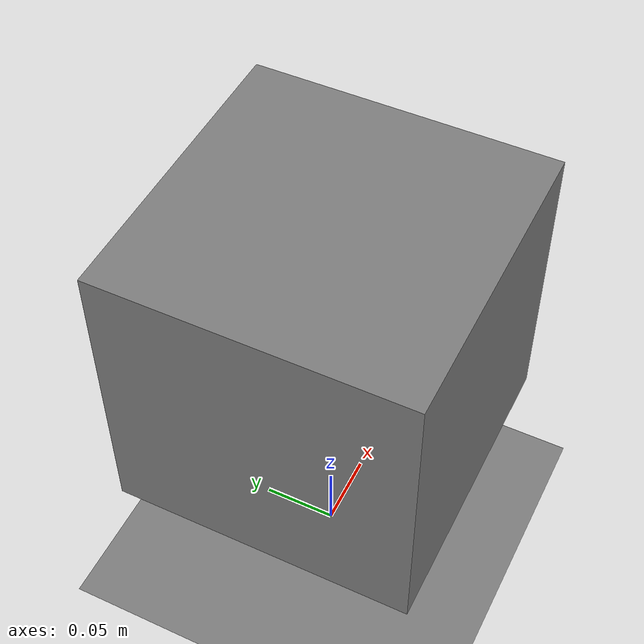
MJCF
<mujoco model="state_indep">
            <option gravity="0 0 -9.81" solver="PGS" cone="elliptic"
                    iterations="100" noslip_iterations="50" noslip_tolerance="1e-12"/>
            <worldbody>
                <body pos="0 0 0.201">
                    <joint type="free"/>
                    <geom type="box" size="0.1 0.1 0.1" mass="1.0"
                          friction="0.5 0.5 0.005"/>
                </body>
                <geom type="plane" size="5 5 0.1"/>
            </worldbody>
        </mujoco>
